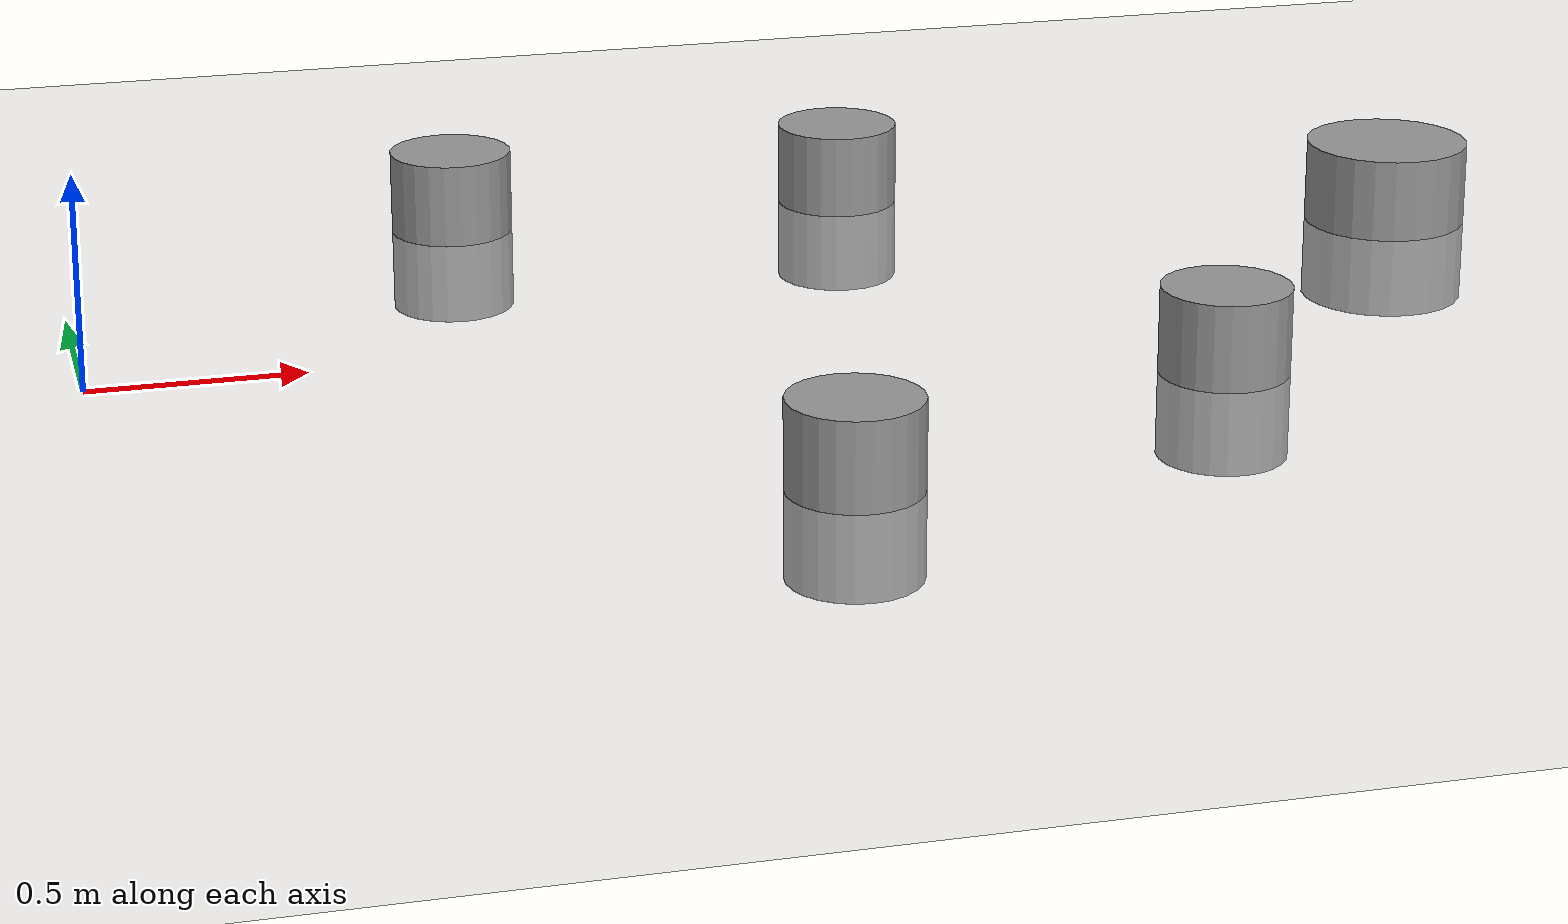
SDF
<?xml version="1.0" ?>
<sdf version='1.7'>
  <world name='default'>
    <light name='sun' type='directional'>
      <cast_shadows>1</cast_shadows>
      <pose>0 0 10 0 -0 0</pose>
      <diffuse>0.8 0.8 0.8 1</diffuse>
      <specular>0.2 0.2 0.2 1</specular>
      <attenuation>
        <range>1000</range>
        <constant>0.9</constant>
        <linear>0.01</linear>
        <quadratic>0.001</quadratic>
      </attenuation>
      <direction>-0.5 0.1 -0.9</direction>
      <spot>
        <inner_angle>0</inner_angle>
        <outer_angle>0</outer_angle>
        <falloff>0</falloff>
      </spot>
    </light>
    <model name='ground_plane'>
      <static>1</static>
      <link name='link'>
        <collision name='collision'>
          <geometry>
            <plane>
              <normal>0 0 1</normal>
              <size>100 100</size>
            </plane>
          </geometry>
          <surface>
            <contact>
              <collide_bitmask>65535</collide_bitmask>
              <ode/>
            </contact>
            <friction>
              <ode>
                <mu>100</mu>
                <mu2>50</mu2>
              </ode>
              <torsional>
                <ode/>
              </torsional>
            </friction>
            <bounce/>
          </surface>
          <max_contacts>10</max_contacts>
        </collision>
        <visual name='visual'>
          <cast_shadows>0</cast_shadows>
          <geometry>
            <plane>
              <normal>0 0 1</normal>
              <size>100 100</size>
            </plane>
          </geometry>
          <material>
            <script>
              <uri>file://media/materials/scripts/gazebo.material</uri>
              <name>Gazebo/Grey</name>
            </script>
          </material>
        </visual>
        <self_collide>0</self_collide>
        <enable_wind>0</enable_wind>
        <kinematic>0</kinematic>
      </link>
    </model>
    <gravity>0 0 -9.8</gravity>
    <magnetic_field>6e-06 2.3e-05 -4.2e-05</magnetic_field>
    <atmosphere type='adiabatic'/>
    <physics type='ode'>
      <max_step_size>0.001</max_step_size>
      <real_time_factor>1</real_time_factor>
      <real_time_update_rate>1000</real_time_update_rate>
    </physics>
    <scene>
      <ambient>0.4 0.4 0.4 1</ambient>
      <background>0.7 0.7 0.7 1</background>
      <shadows>1</shadows>
    </scene>
    <wind/>

    <model name='actor_0'>
      <pose>1.5 -1.0 0.0 0 -0 0</pose>
      <link name='link'>
        <inertial>
          <mass>1</mass>
          <inertia>
            <ixx>0.145833</ixx>
            <ixy>0</ixy>
            <ixz>0</ixz>
            <iyy>0.145833</iyy>
            <iyz>0</iyz>
            <izz>0.125</izz>
          </inertia>
          <pose>0 0 0 0 -0 0</pose>
        </inertial>
        <collision name='collision'>
          <geometry>
            <cylinder>
              <radius>0.15</radius>
              <length>0.4</length>
            </cylinder>
          </geometry>
          <max_contacts>10</max_contacts>
          <surface>
            <contact>
              <ode/>
            </contact>
            <bounce/>
            <friction>
              <torsional>
                <ode/>
              </torsional>
              <ode/>
            </friction>
          </surface>
        </collision>
        <visual name='visual'>
          <geometry>
            <cylinder>
              <radius>0.15</radius>
              <length>0.4</length>
            </cylinder>
          </geometry>
          <material>
            <script>
              <name>Gazebo/Grey</name>
              <uri>file://media/materials/scripts/gazebo.material</uri>
            </script>
          </material>
        </visual>
        <self_collide>0</self_collide>
        <enable_wind>0</enable_wind>
        <kinematic>0</kinematic>
      </link>
    </model>

    <model name='actor_1'>
      <pose>2.5 -0.5 0.0 0 -0 0</pose>
      <link name='link'>
        <inertial>
          <mass>1</mass>
          <inertia>
            <ixx>0.145833</ixx>
            <ixy>0</ixy>
            <ixz>0</ixz>
            <iyy>0.145833</iyy>
            <iyz>0</iyz>
            <izz>0.125</izz>
          </inertia>
          <pose>0 0 0 0 -0 0</pose>
        </inertial>
        <collision name='collision'>
          <geometry>
            <cylinder>
              <radius>0.15</radius>
              <length>0.4</length>
            </cylinder>
          </geometry>
          <max_contacts>10</max_contacts>
          <surface>
            <contact>
              <ode/>
            </contact>
            <bounce/>
            <friction>
              <torsional>
                <ode/>
              </torsional>
              <ode/>
            </friction>
          </surface>
        </collision>
        <visual name='visual'>
          <geometry>
            <cylinder>
              <radius>0.15</radius>
              <length>0.4</length>
            </cylinder>
          </geometry>
          <material>
            <script>
              <name>Gazebo/Grey</name>
              <uri>file://media/materials/scripts/gazebo.material</uri>
            </script>
          </material>
        </visual>
        <self_collide>0</self_collide>
        <enable_wind>0</enable_wind>
        <kinematic>0</kinematic>
      </link>
    </model>

    <model name='actor_2'>
      <pose>1.0 1.0 0.0 0 -0 0</pose>
      <link name='link'>
        <inertial>
          <mass>1</mass>
          <inertia>
            <ixx>0.145833</ixx>
            <ixy>0</ixy>
            <ixz>0</ixz>
            <iyy>0.145833</iyy>
            <iyz>0</iyz>
            <izz>0.125</izz>
          </inertia>
          <pose>0 0 0 0 -0 0</pose>
        </inertial>
        <collision name='collision'>
          <geometry>
            <cylinder>
              <radius>0.15</radius>
              <length>0.4</length>
            </cylinder>
          </geometry>
          <max_contacts>10</max_contacts>
          <surface>
            <contact>
              <ode/>
            </contact>
            <bounce/>
            <friction>
              <torsional>
                <ode/>
              </torsional>
              <ode/>
            </friction>
          </surface>
        </collision>
        <visual name='visual'>
          <geometry>
            <cylinder>
              <radius>0.15</radius>
              <length>0.4</length>
            </cylinder>
          </geometry>
          <material>
            <script>
              <name>Gazebo/Grey</name>
              <uri>file://media/materials/scripts/gazebo.material</uri>
            </script>
          </material>
        </visual>
        <self_collide>0</self_collide>
        <enable_wind>0</enable_wind>
        <kinematic>0</kinematic>
      </link>
    </model>

<model name='actor_3'>
      <pose>2.0 1.0 0.0 0 -0 0</pose>
      <link name='link'>
        <inertial>
          <mass>1</mass>
          <inertia>
            <ixx>0.145833</ixx>
            <ixy>0</ixy>
            <ixz>0</ixz>
            <iyy>0.145833</iyy>
            <iyz>0</iyz>
            <izz>0.125</izz>
          </inertia>
          <pose>0 0 0 0 -0 0</pose>
        </inertial>
        <collision name='collision'>
          <geometry>
            <cylinder>
              <radius>0.15</radius>
              <length>0.4</length>
            </cylinder>
          </geometry>
          <max_contacts>10</max_contacts>
          <surface>
            <contact>
              <ode/>
            </contact>
            <bounce/>
            <friction>
              <torsional>
                <ode/>
              </torsional>
              <ode/>
            </friction>
          </surface>
        </collision>
        <visual name='visual'>
          <geometry>
            <cylinder>
              <radius>0.15</radius>
              <length>0.4</length>
            </cylinder>
          </geometry>
          <material>
            <script>
              <name>Gazebo/Grey</name>
              <uri>file://media/materials/scripts/gazebo.material</uri>
            </script>
          </material>
        </visual>
        <self_collide>0</self_collide>
        <enable_wind>0</enable_wind>
        <kinematic>0</kinematic>
      </link>
    </model>

<model name='actor_4'>
      <pose>3.3 0.5 0.0 0 -0 0</pose>
      <link name='link'>
        <inertial>
          <mass>1</mass>
          <inertia>
            <ixx>0.145833</ixx>
            <ixy>0</ixy>
            <ixz>0</ixz>
            <iyy>0.145833</iyy>
            <iyz>0</iyz>
            <izz>0.125</izz>
          </inertia>
          <pose>0 0 0 0 -0 0</pose>
        </inertial>
        <collision name='collision'>
          <geometry>
            <cylinder>
              <radius>0.2</radius>
              <length>0.4</length>
            </cylinder>
          </geometry>
          <max_contacts>10</max_contacts>
          <surface>
            <contact>
              <ode/>
            </contact>
            <bounce/>
            <friction>
              <torsional>
                <ode/>
              </torsional>
              <ode/>
            </friction>
          </surface>
        </collision>
        <visual name='visual'>
          <geometry>
            <cylinder>
              <radius>0.2</radius>
              <length>0.4</length>
            </cylinder>
          </geometry>
          <material>
            <script>
              <name>Gazebo/Grey</name>
              <uri>file://media/materials/scripts/gazebo.material</uri>
            </script>
          </material>
        </visual>
        <self_collide>0</self_collide>
        <enable_wind>0</enable_wind>
        <kinematic>0</kinematic>
      </link>
    </model>

    <gui fullscreen='0'>
      <camera name='user_camera'>
        <pose>14.8746 -10.6906 5.44606 0 0.275643 2.35619</pose>
        <view_controller>orbit</view_controller>
        <projection_type>perspective</projection_type>
      </camera>
    </gui>
  </world>
</sdf>
